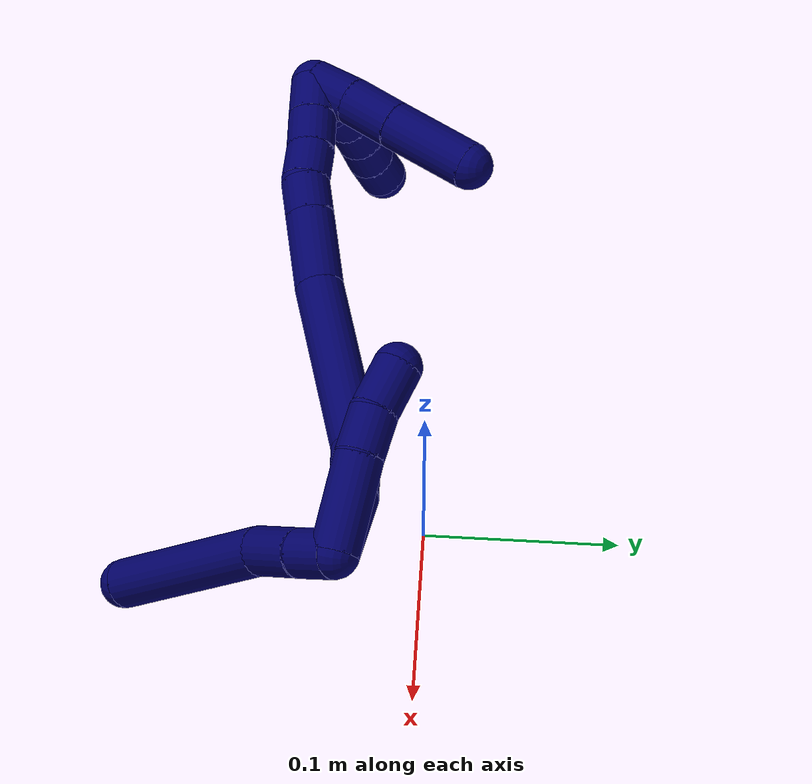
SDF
<sdf version="1.7">
 <world name="default">
  <model name="7">
   <static>0</static>
   <link name="7">
    <collision name="collision-cylinder-e_1_2_8">
     <pose>0.001866 0.001728 -0.011373 -2.99077 0.16082 -1.63517</pose>
     <geometry><cylinder><radius>0.0125</radius><length>0.023307</length></cylinder></geometry>
     <surface>
      <friction><ode><mu>1.16</mu><mu2>1.16</mu2><slip1>0</slip1><slip2>0</slip2></ode></friction>
      <contact><ode><kp>1e+06</kp><kd>1</kd><max_vel>0</max_vel><min_depth>0.001</min_depth></ode></contact>
     </surface>
    </collision>
    <visual name="visual-cylinder-e_1_2_8">
     <pose>0.001866 0.001728 -0.011373 -2.99077 0.16082 -1.63517</pose>
     <geometry><cylinder><radius>0.0125</radius><length>0.023307</length></cylinder></geometry>
     <material><ambient>0.003922 0 0.403922 1</ambient></material>
    </visual>
    <collision name="collision-cylinder-e_2_8_9">
     <pose>0.005579 0.007096 -0.037454 -2.89906 0.121308 -0.924613</pose>
     <geometry><cylinder><radius>0.0125</radius><length>0.030529</length></cylinder></geometry>
     <surface>
      <friction><ode><mu>1.16</mu><mu2>1.16</mu2><slip1>0</slip1><slip2>0</slip2></ode></friction>
      <contact><ode><kp>1e+06</kp><kd>1</kd><max_vel>0</max_vel><min_depth>0.001</min_depth></ode></contact>
     </surface>
    </collision>
    <visual name="visual-cylinder-e_2_8_9">
     <pose>0.005579 0.007096 -0.037454 -2.89906 0.121308 -0.924613</pose>
     <geometry><cylinder><radius>0.0125</radius><length>0.030529</length></cylinder></geometry>
     <material><ambient>0.003922 0 0.403922 1</ambient></material>
    </visual>
    <collision name="collision-cylinder-e_3_9_6">
     <pose>0.024048 0.019566 -0.096407 -2.94458 0.352987 -2.12958</pose>
     <geometry><cylinder><radius>0.0125</radius><length>0.096164</length></cylinder></geometry>
     <surface>
      <friction><ode><mu>1.16</mu><mu2>1.16</mu2><slip1>0</slip1><slip2>0</slip2></ode></friction>
      <contact><ode><kp>1e+06</kp><kd>1</kd><max_vel>0</max_vel><min_depth>0.001</min_depth></ode></contact>
     </surface>
    </collision>
    <visual name="visual-cylinder-e_3_9_6">
     <pose>0.024048 0.019566 -0.096407 -2.94458 0.352987 -2.12958</pose>
     <geometry><cylinder><radius>0.0125</radius><length>0.096164</length></cylinder></geometry>
     <material><ambient>0.003922 0 0.403922 1</ambient></material>
    </visual>
    <collision name="collision-cylinder-e_1_2_10">
     <pose>-0.024628 0.000364 -0.003122 -3.02546 -1.44384 3.00974</pose>
     <geometry><cylinder><radius>0.0125</radius><length>0.049655</length></cylinder></geometry>
     <surface>
      <friction><ode><mu>1.16</mu><mu2>1.16</mu2><slip1>0</slip1><slip2>0</slip2></ode></friction>
      <contact><ode><kp>1e+06</kp><kd>1</kd><max_vel>0</max_vel><min_depth>0.001</min_depth></ode></contact>
     </surface>
    </collision>
    <visual name="visual-cylinder-e_1_2_10">
     <pose>-0.024628 0.000364 -0.003122 -3.02546 -1.44384 3.00974</pose>
     <geometry><cylinder><radius>0.0125</radius><length>0.049655</length></cylinder></geometry>
     <material><ambient>0.003922 0 0.403922 1</ambient></material>
    </visual>
    <collision name="collision-cylinder-e_2_10_11">
     <pose>-0.060842 0.002327 -0.007804 -2.34361 -1.3804 2.19738</pose>
     <geometry><cylinder><radius>0.0125</radius><length>0.023598</length></cylinder></geometry>
     <surface>
      <friction><ode><mu>1.16</mu><mu2>1.16</mu2><slip1>0</slip1><slip2>0</slip2></ode></friction>
      <contact><ode><kp>1e+06</kp><kd>1</kd><max_vel>0</max_vel><min_depth>0.001</min_depth></ode></contact>
     </surface>
    </collision>
    <visual name="visual-cylinder-e_2_10_11">
     <pose>-0.060842 0.002327 -0.007804 -2.34361 -1.3804 2.19738</pose>
     <geometry><cylinder><radius>0.0125</radius><length>0.023598</length></cylinder></geometry>
     <material><ambient>0.003922 0 0.403922 1</ambient></material>
    </visual>
    <collision name="collision-cylinder-e_3_11_5">
     <pose>-0.085211 0.007782 -0.010103 -1.76043 -1.27282 1.45933</pose>
     <geometry><cylinder><radius>0.0125</radius><length>0.026746</length></cylinder></geometry>
     <surface>
      <friction><ode><mu>1.16</mu><mu2>1.16</mu2><slip1>0</slip1><slip2>0</slip2></ode></friction>
      <contact><ode><kp>1e+06</kp><kd>1</kd><max_vel>0</max_vel><min_depth>0.001</min_depth></ode></contact>
     </surface>
    </collision>
    <visual name="visual-cylinder-e_3_11_5">
     <pose>-0.085211 0.007782 -0.010103 -1.76043 -1.27282 1.45933</pose>
     <geometry><cylinder><radius>0.0125</radius><length>0.026746</length></cylinder></geometry>
     <material><ambient>0.003922 0 0.403922 1</ambient></material>
    </visual>
    <collision name="collision-cylinder-e_1_2_12">
     <pose>-0.016228 0.012613 -0.009854 -2.23401 -0.792279 1.4177</pose>
     <geometry><cylinder><radius>0.0125</radius><length>0.045588</length></cylinder></geometry>
     <surface>
      <friction><ode><mu>1.16</mu><mu2>1.16</mu2><slip1>0</slip1><slip2>0</slip2></ode></friction>
      <contact><ode><kp>1e+06</kp><kd>1</kd><max_vel>0</max_vel><min_depth>0.001</min_depth></ode></contact>
     </surface>
    </collision>
    <visual name="visual-cylinder-e_1_2_12">
     <pose>-0.016228 0.012613 -0.009854 -2.23401 -0.792279 1.4177</pose>
     <geometry><cylinder><radius>0.0125</radius><length>0.045588</length></cylinder></geometry>
     <material><ambient>0.003922 0 0.403922 1</ambient></material>
    </visual>
    <collision name="collision-cylinder-e_2_12_13">
     <pose>-0.044899 0.029358 -0.027377 -2.64741 -0.960065 2.23928</pose>
     <geometry><cylinder><radius>0.0125</radius><length>0.030376</length></cylinder></geometry>
     <surface>
      <friction><ode><mu>1.16</mu><mu2>1.16</mu2><slip1>0</slip1><slip2>0</slip2></ode></friction>
      <contact><ode><kp>1e+06</kp><kd>1</kd><max_vel>0</max_vel><min_depth>0.001</min_depth></ode></contact>
     </surface>
    </collision>
    <visual name="visual-cylinder-e_2_12_13">
     <pose>-0.044899 0.029358 -0.027377 -2.64741 -0.960065 2.23928</pose>
     <geometry><cylinder><radius>0.0125</radius><length>0.030376</length></cylinder></geometry>
     <material><ambient>0.003922 0 0.403922 1</ambient></material>
    </visual>
    <collision name="collision-cylinder-e_3_13_14">
     <pose>-0.095286 0.039639 -0.067915 -2.95665 -0.848401 2.73654</pose>
     <geometry><cylinder><radius>0.0125</radius><length>0.101156</length></cylinder></geometry>
     <surface>
      <friction><ode><mu>1.16</mu><mu2>1.16</mu2><slip1>0</slip1><slip2>0</slip2></ode></friction>
      <contact><ode><kp>1e+06</kp><kd>1</kd><max_vel>0</max_vel><min_depth>0.001</min_depth></ode></contact>
     </surface>
    </collision>
    <visual name="visual-cylinder-e_3_13_14">
     <pose>-0.095286 0.039639 -0.067915 -2.95665 -0.848401 2.73654</pose>
     <geometry><cylinder><radius>0.0125</radius><length>0.101156</length></cylinder></geometry>
     <material><ambient>0.003922 0 0.403922 1</ambient></material>
    </visual>
    <collision name="collision-cylinder-e_4_14_15">
     <pose>-0.150837 0.045961 -0.111852 -3.12597 -1.00964 3.11332</pose>
     <geometry><cylinder><radius>0.0125</radius><length>0.041591</length></cylinder></geometry>
     <surface>
      <friction><ode><mu>1.16</mu><mu2>1.16</mu2><slip1>0</slip1><slip2>0</slip2></ode></friction>
      <contact><ode><kp>1e+06</kp><kd>1</kd><max_vel>0</max_vel><min_depth>0.001</min_depth></ode></contact>
     </surface>
    </collision>
    <visual name="visual-cylinder-e_4_14_15">
     <pose>-0.150837 0.045961 -0.111852 -3.12597 -1.00964 3.11332</pose>
     <geometry><cylinder><radius>0.0125</radius><length>0.041591</length></cylinder></geometry>
     <material><ambient>0.003922 0 0.403922 1</ambient></material>
    </visual>
    <collision name="collision-cylinder-e_5_15_16">
     <pose>-0.176955 0.046191 -0.128215 -3.13077 -1.01402 3.12211</pose>
     <geometry><cylinder><radius>0.0125</radius><length>0.020051</length></cylinder></geometry>
     <surface>
      <friction><ode><mu>1.16</mu><mu2>1.16</mu2><slip1>0</slip1><slip2>0</slip2></ode></friction>
      <contact><ode><kp>1e+06</kp><kd>1</kd><max_vel>0</max_vel><min_depth>0.001</min_depth></ode></contact>
     </surface>
    </collision>
    <visual name="visual-cylinder-e_5_15_16">
     <pose>-0.176955 0.046191 -0.128215 -3.13077 -1.01402 3.12211</pose>
     <geometry><cylinder><radius>0.0125</radius><length>0.020051</length></cylinder></geometry>
     <material><ambient>0.003922 0 0.403922 1</ambient></material>
    </visual>
    <collision name="collision-cylinder-e_6_16_17">
     <pose>-0.194478 0.048475 -0.137334 -2.61416 -1.11459 2.3239</pose>
     <geometry><cylinder><radius>0.0125</radius><length>0.020078</length></cylinder></geometry>
     <surface>
      <friction><ode><mu>1.16</mu><mu2>1.16</mu2><slip1>0</slip1><slip2>0</slip2></ode></friction>
      <contact><ode><kp>1e+06</kp><kd>1</kd><max_vel>0</max_vel><min_depth>0.001</min_depth></ode></contact>
     </surface>
    </collision>
    <visual name="visual-cylinder-e_6_16_17">
     <pose>-0.194478 0.048475 -0.137334 -2.61416 -1.11459 2.3239</pose>
     <geometry><cylinder><radius>0.0125</radius><length>0.020078</length></cylinder></geometry>
     <material><ambient>0.003922 0 0.403922 1</ambient></material>
    </visual>
    <collision name="collision-cylinder-e_7_17_18">
     <pose>-0.212451 0.052274 -0.145558 -2.79842 -1.08994 2.58473</pose>
     <geometry><cylinder><radius>0.0125</radius><length>0.020214</length></cylinder></geometry>
     <surface>
      <friction><ode><mu>1.16</mu><mu2>1.16</mu2><slip1>0</slip1><slip2>0</slip2></ode></friction>
      <contact><ode><kp>1e+06</kp><kd>1</kd><max_vel>0</max_vel><min_depth>0.001</min_depth></ode></contact>
     </surface>
    </collision>
    <visual name="visual-cylinder-e_7_17_18">
     <pose>-0.212451 0.052274 -0.145558 -2.79842 -1.08994 2.58473</pose>
     <geometry><cylinder><radius>0.0125</radius><length>0.020214</length></cylinder></geometry>
     <material><ambient>0.003922 0 0.403922 1</ambient></material>
    </visual>
    <collision name="collision-cylinder-e_8_18_1">
     <pose>-0.230691 0.055663 -0.154465 -2.75841 -1.08855 2.52131</pose>
     <geometry><cylinder><radius>0.0125</radius><length>0.020946</length></cylinder></geometry>
     <surface>
      <friction><ode><mu>1.16</mu><mu2>1.16</mu2><slip1>0</slip1><slip2>0</slip2></ode></friction>
      <contact><ode><kp>1e+06</kp><kd>1</kd><max_vel>0</max_vel><min_depth>0.001</min_depth></ode></contact>
     </surface>
    </collision>
    <visual name="visual-cylinder-e_8_18_1">
     <pose>-0.230691 0.055663 -0.154465 -2.75841 -1.08855 2.52131</pose>
     <geometry><cylinder><radius>0.0125</radius><length>0.020946</length></cylinder></geometry>
     <material><ambient>0.003922 0 0.403922 1</ambient></material>
    </visual>
    <collision name="collision-cylinder-e_1_1_19">
     <pose>-0.236867 0.066972 -0.158474 -1.51856 0.315475 -0.299656</pose>
     <geometry><cylinder><radius>0.0125</radius><length>0.02</length></cylinder></geometry>
     <surface>
      <friction><ode><mu>1.16</mu><mu2>1.16</mu2><slip1>0</slip1><slip2>0</slip2></ode></friction>
      <contact><ode><kp>1e+06</kp><kd>1</kd><max_vel>0</max_vel><min_depth>0.001</min_depth></ode></contact>
     </surface>
    </collision>
    <visual name="visual-cylinder-e_1_1_19">
     <pose>-0.236867 0.066972 -0.158474 -1.51856 0.315475 -0.299656</pose>
     <geometry><cylinder><radius>0.0125</radius><length>0.02</length></cylinder></geometry>
     <material><ambient>0.003922 0 0.403922 1</ambient></material>
    </visual>
    <collision name="collision-cylinder-e_2_19_20">
     <pose>-0.233247 0.08636 -0.159328 -1.70643 0.051777 -0.059319</pose>
     <geometry><cylinder><radius>0.0125</radius><length>0.02</length></cylinder></geometry>
     <surface>
      <friction><ode><mu>1.16</mu><mu2>1.16</mu2><slip1>0</slip1><slip2>0</slip2></ode></friction>
      <contact><ode><kp>1e+06</kp><kd>1</kd><max_vel>0</max_vel><min_depth>0.001</min_depth></ode></contact>
     </surface>
    </collision>
    <visual name="visual-cylinder-e_2_19_20">
     <pose>-0.233247 0.08636 -0.159328 -1.70643 0.051777 -0.059319</pose>
     <geometry><cylinder><radius>0.0125</radius><length>0.02</length></cylinder></geometry>
     <material><ambient>0.003922 0 0.403922 1</ambient></material>
    </visual>
    <collision name="collision-cylinder-e_3_20_21">
     <pose>-0.230852 0.105854 -0.162764 -1.78477 0.188864 -0.233937</pose>
     <geometry><cylinder><radius>0.0125</radius><length>0.02</length></cylinder></geometry>
     <surface>
      <friction><ode><mu>1.16</mu><mu2>1.16</mu2><slip1>0</slip1><slip2>0</slip2></ode></friction>
      <contact><ode><kp>1e+06</kp><kd>1</kd><max_vel>0</max_vel><min_depth>0.001</min_depth></ode></contact>
     </surface>
    </collision>
    <visual name="visual-cylinder-e_3_20_21">
     <pose>-0.230852 0.105854 -0.162764 -1.78477 0.188864 -0.233937</pose>
     <geometry><cylinder><radius>0.0125</radius><length>0.02</length></cylinder></geometry>
     <material><ambient>0.003922 0 0.403922 1</ambient></material>
    </visual>
    <collision name="collision-cylinder-e_4_21_22">
     <pose>-0.226718 0.124944 -0.167042 -1.79783 0.227629 -0.285498</pose>
     <geometry><cylinder><radius>0.0125</radius><length>0.02</length></cylinder></geometry>
     <surface>
      <friction><ode><mu>1.16</mu><mu2>1.16</mu2><slip1>0</slip1><slip2>0</slip2></ode></friction>
      <contact><ode><kp>1e+06</kp><kd>1</kd><max_vel>0</max_vel><min_depth>0.001</min_depth></ode></contact>
     </surface>
    </collision>
    <visual name="visual-cylinder-e_4_21_22">
     <pose>-0.226718 0.124944 -0.167042 -1.79783 0.227629 -0.285498</pose>
     <geometry><cylinder><radius>0.0125</radius><length>0.02</length></cylinder></geometry>
     <material><ambient>0.003922 0 0.403922 1</ambient></material>
    </visual>
    <collision name="collision-cylinder-e_5_22_4">
     <pose>-0.222533 0.144127 -0.170772 -1.72812 0.194083 -0.227035</pose>
     <geometry><cylinder><radius>0.0125</radius><length>0.02</length></cylinder></geometry>
     <surface>
      <friction><ode><mu>1.16</mu><mu2>1.16</mu2><slip1>0</slip1><slip2>0</slip2></ode></friction>
      <contact><ode><kp>1e+06</kp><kd>1</kd><max_vel>0</max_vel><min_depth>0.001</min_depth></ode></contact>
     </surface>
    </collision>
    <visual name="visual-cylinder-e_5_22_4">
     <pose>-0.222533 0.144127 -0.170772 -1.72812 0.194083 -0.227035</pose>
     <geometry><cylinder><radius>0.0125</radius><length>0.02</length></cylinder></geometry>
     <material><ambient>0.003922 0 0.403922 1</ambient></material>
    </visual>
    <collision name="collision-cylinder-e_1_1_23">
     <pose>-0.238059 0.060254 -0.147467 -0.236801 0.160072 -0.019082</pose>
     <geometry><cylinder><radius>0.0125</radius><length>0.023972</length></cylinder></geometry>
     <surface>
      <friction><ode><mu>1.16</mu><mu2>1.16</mu2><slip1>0</slip1><slip2>0</slip2></ode></friction>
      <contact><ode><kp>1e+06</kp><kd>1</kd><max_vel>0</max_vel><min_depth>0.001</min_depth></ode></contact>
     </surface>
    </collision>
    <visual name="visual-cylinder-e_1_1_23">
     <pose>-0.238059 0.060254 -0.147467 -0.236801 0.160072 -0.019082</pose>
     <geometry><cylinder><radius>0.0125</radius><length>0.023972</length></cylinder></geometry>
     <material><ambient>0.003922 0 0.403922 1</ambient></material>
    </visual>
    <collision name="collision-cylinder-e_2_23_24">
     <pose>-0.232909 0.066053 -0.122522 -0.221185 0.230993 -0.025764</pose>
     <geometry><cylinder><radius>0.0125</radius><length>0.028308</length></cylinder></geometry>
     <surface>
      <friction><ode><mu>1.16</mu><mu2>1.16</mu2><slip1>0</slip1><slip2>0</slip2></ode></friction>
      <contact><ode><kp>1e+06</kp><kd>1</kd><max_vel>0</max_vel><min_depth>0.001</min_depth></ode></contact>
     </surface>
    </collision>
    <visual name="visual-cylinder-e_2_23_24">
     <pose>-0.232909 0.066053 -0.122522 -0.221185 0.230993 -0.025764</pose>
     <geometry><cylinder><radius>0.0125</radius><length>0.028308</length></cylinder></geometry>
     <material><ambient>0.003922 0 0.403922 1</ambient></material>
    </visual>
    <collision name="collision-cylinder-e_3_24_3">
     <pose>-0.224562 0.075121 -0.08657 -0.262371 0.215675 -0.028566</pose>
     <geometry><cylinder><radius>0.0125</radius><length>0.04772</length></cylinder></geometry>
     <surface>
      <friction><ode><mu>1.16</mu><mu2>1.16</mu2><slip1>0</slip1><slip2>0</slip2></ode></friction>
      <contact><ode><kp>1e+06</kp><kd>1</kd><max_vel>0</max_vel><min_depth>0.001</min_depth></ode></contact>
     </surface>
    </collision>
    <visual name="visual-cylinder-e_3_24_3">
     <pose>-0.224562 0.075121 -0.08657 -0.262371 0.215675 -0.028566</pose>
     <geometry><cylinder><radius>0.0125</radius><length>0.04772</length></cylinder></geometry>
     <material><ambient>0.003922 0 0.403922 1</ambient></material>
    </visual>
    <collision name="collision-sphere-3">
     <pose>-0.219456 0.081166 -0.064061 0 -0 0</pose>
     <geometry><sphere><radius>0.0125</radius></sphere></geometry>
     <surface>
      <friction><ode><mu>1.16</mu><mu2>1.16</mu2><slip1>0</slip1><slip2>0</slip2></ode></friction>
      <contact><ode><kp>1e+06</kp><kd>1</kd><max_vel>0</max_vel><min_depth>0.001</min_depth></ode></contact>
     </surface>
    </collision>
    <visual name="visual-sphere-3">
     <pose>-0.219456 0.081166 -0.064061 0 -0 0</pose>
     <geometry><sphere><radius>0.0125</radius></sphere></geometry>
     <material><ambient>0.003922 0 0.403922 1</ambient></material>
    </visual>
    <collision name="collision-sphere-24">
     <pose>-0.229668 0.069076 -0.10908 0 -0 0</pose>
     <geometry><sphere><radius>0.0125</radius></sphere></geometry>
     <surface>
      <friction><ode><mu>1.16</mu><mu2>1.16</mu2><slip1>0</slip1><slip2>0</slip2></ode></friction>
      <contact><ode><kp>1e+06</kp><kd>1</kd><max_vel>0</max_vel><min_depth>0.001</min_depth></ode></contact>
     </surface>
    </collision>
    <visual name="visual-sphere-24">
     <pose>-0.229668 0.069076 -0.10908 0 -0 0</pose>
     <geometry><sphere><radius>0.0125</radius></sphere></geometry>
     <material><ambient>0.003922 0 0.403922 1</ambient></material>
    </visual>
    <collision name="collision-sphere-23">
     <pose>-0.236149 0.06303 -0.135965 0 -0 0</pose>
     <geometry><sphere><radius>0.0125</radius></sphere></geometry>
     <surface>
      <friction><ode><mu>1.16</mu><mu2>1.16</mu2><slip1>0</slip1><slip2>0</slip2></ode></friction>
      <contact><ode><kp>1e+06</kp><kd>1</kd><max_vel>0</max_vel><min_depth>0.001</min_depth></ode></contact>
     </surface>
    </collision>
    <visual name="visual-sphere-23">
     <pose>-0.236149 0.06303 -0.135965 0 -0 0</pose>
     <geometry><sphere><radius>0.0125</radius></sphere></geometry>
     <material><ambient>0.003922 0 0.403922 1</ambient></material>
    </visual>
    <collision name="collision-sphere-4">
     <pose>-0.220604 0.153818 -0.17231 0 -0 0</pose>
     <geometry><sphere><radius>0.0125</radius></sphere></geometry>
     <surface>
      <friction><ode><mu>1.16</mu><mu2>1.16</mu2><slip1>0</slip1><slip2>0</slip2></ode></friction>
      <contact><ode><kp>1e+06</kp><kd>1</kd><max_vel>0</max_vel><min_depth>0.001</min_depth></ode></contact>
     </surface>
    </collision>
    <visual name="visual-sphere-4">
     <pose>-0.220604 0.153818 -0.17231 0 -0 0</pose>
     <geometry><sphere><radius>0.0125</radius></sphere></geometry>
     <material><ambient>0.003922 0 0.403922 1</ambient></material>
    </visual>
    <collision name="collision-sphere-22">
     <pose>-0.224461 0.134436 -0.169235 0 -0 0</pose>
     <geometry><sphere><radius>0.0125</radius></sphere></geometry>
     <surface>
      <friction><ode><mu>1.16</mu><mu2>1.16</mu2><slip1>0</slip1><slip2>0</slip2></ode></friction>
      <contact><ode><kp>1e+06</kp><kd>1</kd><max_vel>0</max_vel><min_depth>0.001</min_depth></ode></contact>
     </surface>
    </collision>
    <visual name="visual-sphere-22">
     <pose>-0.224461 0.134436 -0.169235 0 -0 0</pose>
     <geometry><sphere><radius>0.0125</radius></sphere></geometry>
     <material><ambient>0.003922 0 0.403922 1</ambient></material>
    </visual>
    <collision name="collision-sphere-21">
     <pose>-0.228975 0.115452 -0.164849 0 -0 0</pose>
     <geometry><sphere><radius>0.0125</radius></sphere></geometry>
     <surface>
      <friction><ode><mu>1.16</mu><mu2>1.16</mu2><slip1>0</slip1><slip2>0</slip2></ode></friction>
      <contact><ode><kp>1e+06</kp><kd>1</kd><max_vel>0</max_vel><min_depth>0.001</min_depth></ode></contact>
     </surface>
    </collision>
    <visual name="visual-sphere-21">
     <pose>-0.228975 0.115452 -0.164849 0 -0 0</pose>
     <geometry><sphere><radius>0.0125</radius></sphere></geometry>
     <material><ambient>0.003922 0 0.403922 1</ambient></material>
    </visual>
    <collision name="collision-sphere-20">
     <pose>-0.23273 0.096255 -0.160678 0 -0 0</pose>
     <geometry><sphere><radius>0.0125</radius></sphere></geometry>
     <surface>
      <friction><ode><mu>1.16</mu><mu2>1.16</mu2><slip1>0</slip1><slip2>0</slip2></ode></friction>
      <contact><ode><kp>1e+06</kp><kd>1</kd><max_vel>0</max_vel><min_depth>0.001</min_depth></ode></contact>
     </surface>
    </collision>
    <visual name="visual-sphere-20">
     <pose>-0.23273 0.096255 -0.160678 0 -0 0</pose>
     <geometry><sphere><radius>0.0125</radius></sphere></geometry>
     <material><ambient>0.003922 0 0.403922 1</ambient></material>
    </visual>
    <collision name="collision-sphere-11">
     <pose>-0.072428 0.003926 -0.009363 0 -0 0</pose>
     <geometry><sphere><radius>0.0125</radius></sphere></geometry>
     <surface>
      <friction><ode><mu>1.16</mu><mu2>1.16</mu2><slip1>0</slip1><slip2>0</slip2></ode></friction>
      <contact><ode><kp>1e+06</kp><kd>1</kd><max_vel>0</max_vel><min_depth>0.001</min_depth></ode></contact>
     </surface>
    </collision>
    <visual name="visual-sphere-11">
     <pose>-0.072428 0.003926 -0.009363 0 -0 0</pose>
     <geometry><sphere><radius>0.0125</radius></sphere></geometry>
     <material><ambient>0.003922 0 0.403922 1</ambient></material>
    </visual>
    <collision name="collision-sphere-10">
     <pose>-0.049256 0.000729 -0.006245 0 -0 0</pose>
     <geometry><sphere><radius>0.0125</radius></sphere></geometry>
     <surface>
      <friction><ode><mu>1.16</mu><mu2>1.16</mu2><slip1>0</slip1><slip2>0</slip2></ode></friction>
      <contact><ode><kp>1e+06</kp><kd>1</kd><max_vel>0</max_vel><min_depth>0.001</min_depth></ode></contact>
     </surface>
    </collision>
    <visual name="visual-sphere-10">
     <pose>-0.049256 0.000729 -0.006245 0 -0 0</pose>
     <geometry><sphere><radius>0.0125</radius></sphere></geometry>
     <material><ambient>0.003922 0 0.403922 1</ambient></material>
    </visual>
    <collision name="collision-sphere-6">
     <pose>0.040671 0.028398 -0.140652 0 -0 0</pose>
     <geometry><sphere><radius>0.0125</radius></sphere></geometry>
     <surface>
      <friction><ode><mu>1.16</mu><mu2>1.16</mu2><slip1>0</slip1><slip2>0</slip2></ode></friction>
      <contact><ode><kp>1e+06</kp><kd>1</kd><max_vel>0</max_vel><min_depth>0.001</min_depth></ode></contact>
     </surface>
    </collision>
    <visual name="visual-sphere-6">
     <pose>0.040671 0.028398 -0.140652 0 -0 0</pose>
     <geometry><sphere><radius>0.0125</radius></sphere></geometry>
     <material><ambient>0.003922 0 0.403922 1</ambient></material>
    </visual>
    <collision name="collision-sphere-9">
     <pose>0.007426 0.010735 -0.052163 0 -0 0</pose>
     <geometry><sphere><radius>0.0125</radius></sphere></geometry>
     <surface>
      <friction><ode><mu>1.16</mu><mu2>1.16</mu2><slip1>0</slip1><slip2>0</slip2></ode></friction>
      <contact><ode><kp>1e+06</kp><kd>1</kd><max_vel>0</max_vel><min_depth>0.001</min_depth></ode></contact>
     </surface>
    </collision>
    <visual name="visual-sphere-9">
     <pose>0.007426 0.010735 -0.052163 0 -0 0</pose>
     <geometry><sphere><radius>0.0125</radius></sphere></geometry>
     <material><ambient>0.003922 0 0.403922 1</ambient></material>
    </visual>
    <collision name="collision-sphere-2">
     <geometry><sphere><radius>0.0125</radius></sphere></geometry>
     <surface>
      <friction><ode><mu>1.16</mu><mu2>1.16</mu2><slip1>0</slip1><slip2>0</slip2></ode></friction>
      <contact><ode><kp>1e+06</kp><kd>1</kd><max_vel>0</max_vel><min_depth>0.001</min_depth></ode></contact>
     </surface>
    </collision>
    <visual name="visual-sphere-2">
     <geometry><sphere><radius>0.0125</radius></sphere></geometry>
     <material><ambient>0.003922 0 0.403922 1</ambient></material>
    </visual>
    <collision name="collision-sphere-19">
     <pose>-0.233765 0.076466 -0.157977 0 -0 0</pose>
     <geometry><sphere><radius>0.0125</radius></sphere></geometry>
     <surface>
      <friction><ode><mu>1.16</mu><mu2>1.16</mu2><slip1>0</slip1><slip2>0</slip2></ode></friction>
      <contact><ode><kp>1e+06</kp><kd>1</kd><max_vel>0</max_vel><min_depth>0.001</min_depth></ode></contact>
     </surface>
    </collision>
    <visual name="visual-sphere-19">
     <pose>-0.233765 0.076466 -0.157977 0 -0 0</pose>
     <geometry><sphere><radius>0.0125</radius></sphere></geometry>
     <material><ambient>0.003922 0 0.403922 1</ambient></material>
    </visual>
    <collision name="collision-sphere-8">
     <pose>0.003732 0.003457 -0.022745 0 -0 0</pose>
     <geometry><sphere><radius>0.0125</radius></sphere></geometry>
     <surface>
      <friction><ode><mu>1.16</mu><mu2>1.16</mu2><slip1>0</slip1><slip2>0</slip2></ode></friction>
      <contact><ode><kp>1e+06</kp><kd>1</kd><max_vel>0</max_vel><min_depth>0.001</min_depth></ode></contact>
     </surface>
    </collision>
    <visual name="visual-sphere-8">
     <pose>0.003732 0.003457 -0.022745 0 -0 0</pose>
     <geometry><sphere><radius>0.0125</radius></sphere></geometry>
     <material><ambient>0.003922 0 0.403922 1</ambient></material>
    </visual>
    <collision name="collision-sphere-5">
     <pose>-0.097995 0.011637 -0.010843 0 -0 0</pose>
     <geometry><sphere><radius>0.0125</radius></sphere></geometry>
     <surface>
      <friction><ode><mu>1.16</mu><mu2>1.16</mu2><slip1>0</slip1><slip2>0</slip2></ode></friction>
      <contact><ode><kp>1e+06</kp><kd>1</kd><max_vel>0</max_vel><min_depth>0.001</min_depth></ode></contact>
     </surface>
    </collision>
    <visual name="visual-sphere-5">
     <pose>-0.097995 0.011637 -0.010843 0 -0 0</pose>
     <geometry><sphere><radius>0.0125</radius></sphere></geometry>
     <material><ambient>0.003922 0 0.403922 1</ambient></material>
    </visual>
    <collision name="collision-sphere-12">
     <pose>-0.032457 0.025227 -0.019709 0 -0 0</pose>
     <geometry><sphere><radius>0.0125</radius></sphere></geometry>
     <surface>
      <friction><ode><mu>1.16</mu><mu2>1.16</mu2><slip1>0</slip1><slip2>0</slip2></ode></friction>
      <contact><ode><kp>1e+06</kp><kd>1</kd><max_vel>0</max_vel><min_depth>0.001</min_depth></ode></contact>
     </surface>
    </collision>
    <visual name="visual-sphere-12">
     <pose>-0.032457 0.025227 -0.019709 0 -0 0</pose>
     <geometry><sphere><radius>0.0125</radius></sphere></geometry>
     <material><ambient>0.003922 0 0.403922 1</ambient></material>
    </visual>
    <collision name="collision-sphere-13">
     <pose>-0.057341 0.033489 -0.035044 0 -0 0</pose>
     <geometry><sphere><radius>0.0125</radius></sphere></geometry>
     <surface>
      <friction><ode><mu>1.16</mu><mu2>1.16</mu2><slip1>0</slip1><slip2>0</slip2></ode></friction>
      <contact><ode><kp>1e+06</kp><kd>1</kd><max_vel>0</max_vel><min_depth>0.001</min_depth></ode></contact>
     </surface>
    </collision>
    <visual name="visual-sphere-13">
     <pose>-0.057341 0.033489 -0.035044 0 -0 0</pose>
     <geometry><sphere><radius>0.0125</radius></sphere></geometry>
     <material><ambient>0.003922 0 0.403922 1</ambient></material>
    </visual>
    <collision name="collision-sphere-14">
     <pose>-0.133231 0.045788 -0.100787 0 -0 0</pose>
     <geometry><sphere><radius>0.0125</radius></sphere></geometry>
     <surface>
      <friction><ode><mu>1.16</mu><mu2>1.16</mu2><slip1>0</slip1><slip2>0</slip2></ode></friction>
      <contact><ode><kp>1e+06</kp><kd>1</kd><max_vel>0</max_vel><min_depth>0.001</min_depth></ode></contact>
     </surface>
    </collision>
    <visual name="visual-sphere-14">
     <pose>-0.133231 0.045788 -0.100787 0 -0 0</pose>
     <geometry><sphere><radius>0.0125</radius></sphere></geometry>
     <material><ambient>0.003922 0 0.403922 1</ambient></material>
    </visual>
    <collision name="collision-sphere-15">
     <pose>-0.168444 0.046134 -0.122917 0 -0 0</pose>
     <geometry><sphere><radius>0.0125</radius></sphere></geometry>
     <surface>
      <friction><ode><mu>1.16</mu><mu2>1.16</mu2><slip1>0</slip1><slip2>0</slip2></ode></friction>
      <contact><ode><kp>1e+06</kp><kd>1</kd><max_vel>0</max_vel><min_depth>0.001</min_depth></ode></contact>
     </surface>
    </collision>
    <visual name="visual-sphere-15">
     <pose>-0.168444 0.046134 -0.122917 0 -0 0</pose>
     <geometry><sphere><radius>0.0125</radius></sphere></geometry>
     <material><ambient>0.003922 0 0.403922 1</ambient></material>
    </visual>
    <collision name="collision-sphere-16">
     <pose>-0.185466 0.046249 -0.133512 0 -0 0</pose>
     <geometry><sphere><radius>0.0125</radius></sphere></geometry>
     <surface>
      <friction><ode><mu>1.16</mu><mu2>1.16</mu2><slip1>0</slip1><slip2>0</slip2></ode></friction>
      <contact><ode><kp>1e+06</kp><kd>1</kd><max_vel>0</max_vel><min_depth>0.001</min_depth></ode></contact>
     </surface>
    </collision>
    <visual name="visual-sphere-16">
     <pose>-0.185466 0.046249 -0.133512 0 -0 0</pose>
     <geometry><sphere><radius>0.0125</radius></sphere></geometry>
     <material><ambient>0.003922 0 0.403922 1</ambient></material>
    </visual>
    <collision name="collision-sphere-17">
     <pose>-0.20349 0.050701 -0.141156 0 -0 0</pose>
     <geometry><sphere><radius>0.0125</radius></sphere></geometry>
     <surface>
      <friction><ode><mu>1.16</mu><mu2>1.16</mu2><slip1>0</slip1><slip2>0</slip2></ode></friction>
      <contact><ode><kp>1e+06</kp><kd>1</kd><max_vel>0</max_vel><min_depth>0.001</min_depth></ode></contact>
     </surface>
    </collision>
    <visual name="visual-sphere-17">
     <pose>-0.20349 0.050701 -0.141156 0 -0 0</pose>
     <geometry><sphere><radius>0.0125</radius></sphere></geometry>
     <material><ambient>0.003922 0 0.403922 1</ambient></material>
    </visual>
    <collision name="collision-sphere-18">
     <pose>-0.221412 0.053847 -0.14996 0 -0 0</pose>
     <geometry><sphere><radius>0.0125</radius></sphere></geometry>
     <surface>
      <friction><ode><mu>1.16</mu><mu2>1.16</mu2><slip1>0</slip1><slip2>0</slip2></ode></friction>
      <contact><ode><kp>1e+06</kp><kd>1</kd><max_vel>0</max_vel><min_depth>0.001</min_depth></ode></contact>
     </surface>
    </collision>
    <visual name="visual-sphere-18">
     <pose>-0.221412 0.053847 -0.14996 0 -0 0</pose>
     <geometry><sphere><radius>0.0125</radius></sphere></geometry>
     <material><ambient>0.003922 0 0.403922 1</ambient></material>
    </visual>
    <collision name="collision-sphere-1">
     <pose>-0.23997 0.057479 -0.15897 0 -0 0</pose>
     <geometry><sphere><radius>0.0125</radius></sphere></geometry>
     <surface>
      <friction><ode><mu>1.16</mu><mu2>1.16</mu2><slip1>0</slip1><slip2>0</slip2></ode></friction>
      <contact><ode><kp>1e+06</kp><kd>1</kd><max_vel>0</max_vel><min_depth>0.001</min_depth></ode></contact>
     </surface>
    </collision>
    <visual name="visual-sphere-1">
     <pose>-0.23997 0.057479 -0.15897 0 -0 0</pose>
     <geometry><sphere><radius>0.0125</radius></sphere></geometry>
     <material><ambient>0.003922 0 0.403922 1</ambient></material>
    </visual>
    <inertial>
     <pose>-0.110703 0.041858 -0.084133 0 -0 0</pose>
     <mass>0.75</mass>
     <inertia><ixx>-0.000132</ixx><ixy>0</ixy><ixz>0</ixz><iyy>0.000165</iyy><iyz>0</iyz><izz>1e-05</izz></inertia>
    </inertial>
   </link>
   <pose>0.086514 -0.039058 0.106196 -1.1438 0.476517 -0.323792</pose>
  </model>
 </world>
</sdf>
